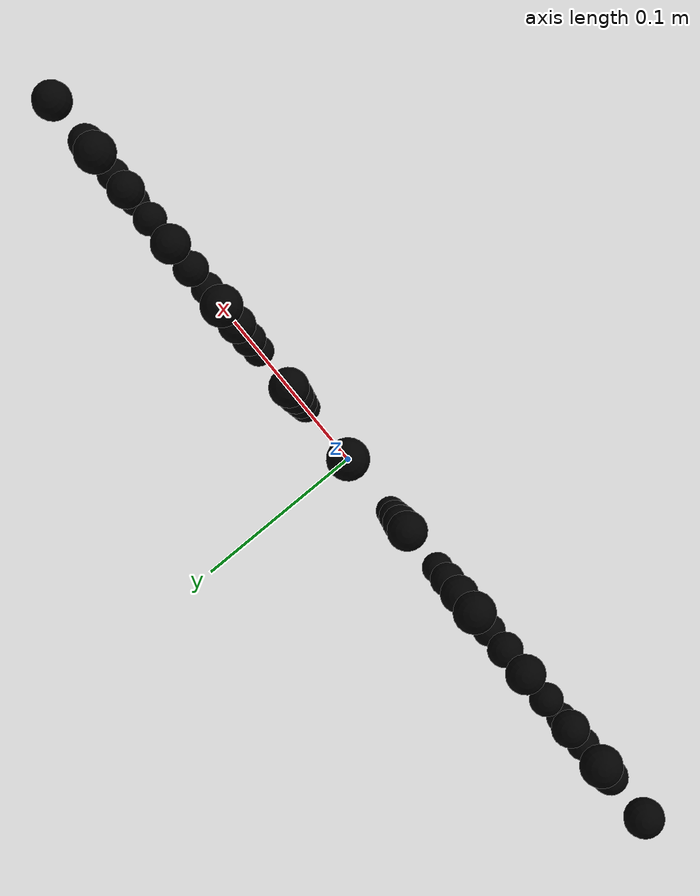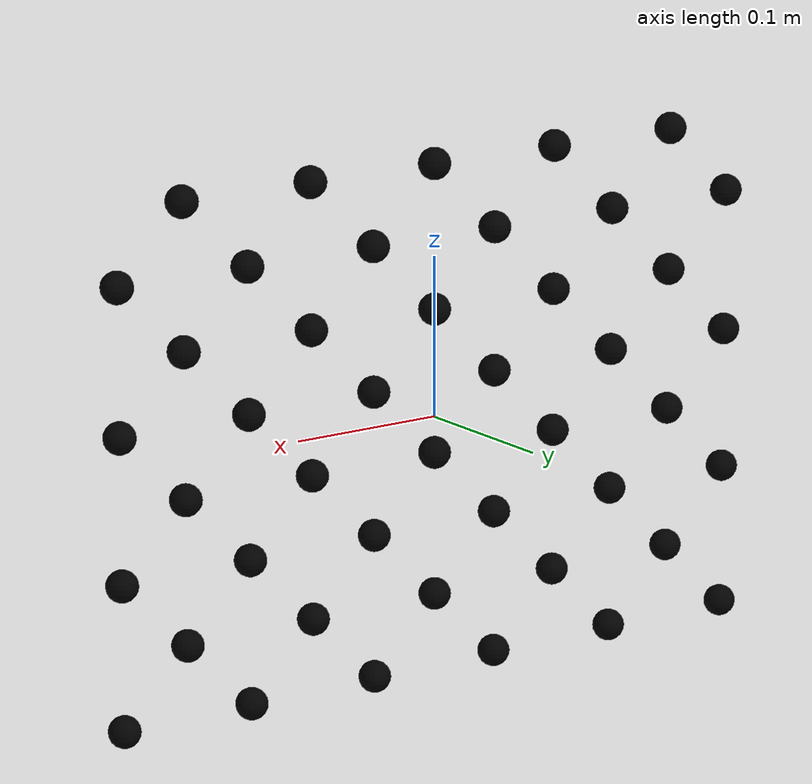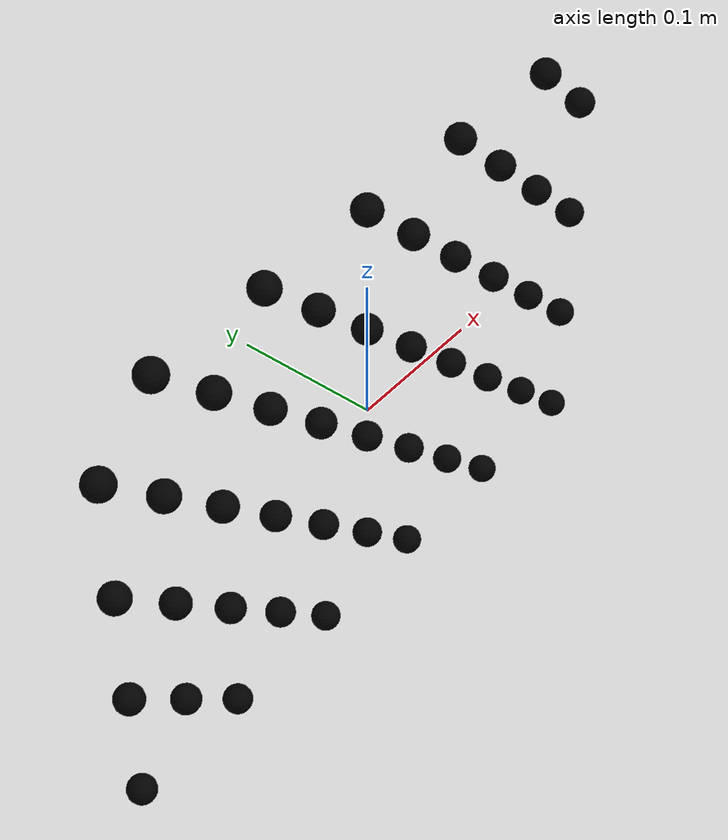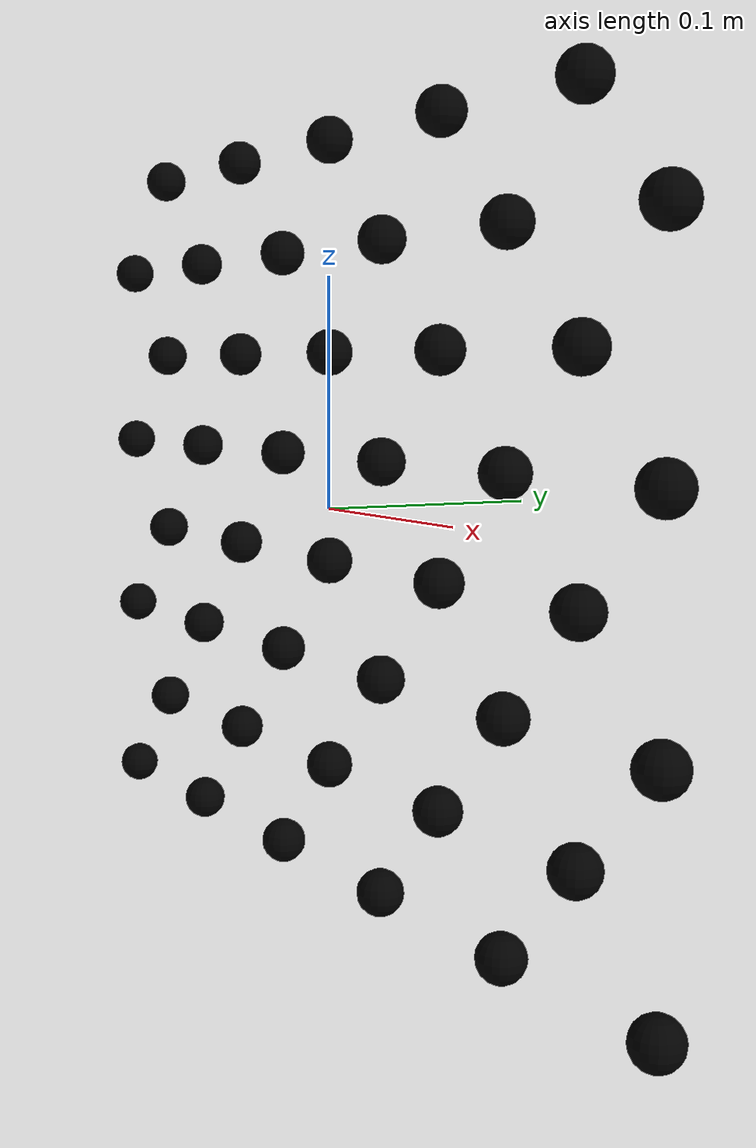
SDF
<?xml version="1.0" ?>
<sdf version="1.6">
  <model name="plate_holes">

    <link name="A1">
      <pose>-0.18 0 0.1575 0 0 0</pose>
      <collision name="collision"><geometry><sphere><radius>0.01</radius></sphere></geometry></collision>
      <visual name="visual"><geometry><sphere><radius>0.01</radius></sphere></geometry>  <material><ambient>0 0 0 1</ambient><diffuse>0 0 0 1</diffuse><specular>0 0 0 0</specular><emissive>1.0 0.2 0.2 1</emissive></material>
      </visual>
    </link>

    <link name="A2">
      <pose>-0.09 0 0.1575 0 0 0</pose>
      <collision name="collision"><geometry><sphere><radius>0.01</radius></sphere></geometry></collision>
      <visual name="visual"><geometry><sphere><radius>0.01</radius></sphere></geometry>  <material><ambient>0 0 0 1</ambient><diffuse>0 0 0 1</diffuse><specular>0 0 0 0</specular><emissive>1.0 0.2 0.2 1</emissive></material>
      </visual>
    </link>

    <link name="A3">
      <pose>0 0 0.1575 0 0 0</pose>
      <collision name="collision"><geometry><sphere><radius>0.01</radius></sphere></geometry></collision>
      <visual name="visual"><geometry><sphere><radius>0.01</radius></sphere></geometry>  <material><ambient>0 0 0 1</ambient><diffuse>0 0 0 1</diffuse><specular>0 0 0 0</specular><emissive>1.0 0.2 0.2 1</emissive></material>
      </visual>
    </link>

    <link name="A4">
      <pose>0.09 0 0.1575 0 0 0</pose>
      <collision name="collision"><geometry><sphere><radius>0.01</radius></sphere></geometry></collision>
      <visual name="visual"><geometry><sphere><radius>0.01</radius></sphere></geometry>  <material><ambient>0 0 0 1</ambient><diffuse>0 0 0 1</diffuse><specular>0 0 0 0</specular><emissive>1.0 0.2 0.2 1</emissive></material>
      </visual>
    </link>

    <link name="A5">
      <pose>0.18 0 0.1575 0 0 0</pose>
      <collision name="collision"><geometry><sphere><radius>0.01</radius></sphere></geometry></collision>
      <visual name="visual"><geometry><sphere><radius>0.01</radius></sphere></geometry>  <material><ambient>0 0 0 1</ambient><diffuse>0 0 0 1</diffuse><specular>0 0 0 0</specular><emissive>1.0 0.2 0.2 1</emissive></material>
      </visual>
    </link>

    <link name="B1">
      <pose>-0.225 0 0.1125 0 0 0</pose>
      <collision name="collision"><geometry><sphere><radius>0.01</radius></sphere></geometry></collision>
      <visual name="visual"><geometry><sphere><radius>0.01</radius></sphere></geometry>  <material><ambient>0 0 0 1</ambient><diffuse>0 0 0 1</diffuse><specular>0 0 0 0</specular><emissive>1.0 0.2 0.2 1</emissive></material>
      </visual>
    </link>

    <link name="B2">
      <pose>-0.135 0 0.1125 0 0 0</pose>
      <collision name="collision"><geometry><sphere><radius>0.01</radius></sphere></geometry></collision>
      <visual name="visual"><geometry><sphere><radius>0.01</radius></sphere></geometry>  <material><ambient>0 0 0 1</ambient><diffuse>0 0 0 1</diffuse><specular>0 0 0 0</specular><emissive>1.0 0.2 0.2 1</emissive></material>
      </visual>
    </link>

    <link name="B3">
      <pose>-0.045 0 0.1125 0 0 0</pose>
      <collision name="collision"><geometry><sphere><radius>0.01</radius></sphere></geometry></collision>
      <visual name="visual"><geometry><sphere><radius>0.01</radius></sphere></geometry>  <material><ambient>0 0 0 1</ambient><diffuse>0 0 0 1</diffuse><specular>0 0 0 0</specular><emissive>1.0 0.2 0.2 1</emissive></material>
      </visual>
    </link>

    <link name="B4">
      <pose>0.045 0 0.1125 0 0 0</pose>
      <collision name="collision"><geometry><sphere><radius>0.01</radius></sphere></geometry></collision>
      <visual name="visual"><geometry><sphere><radius>0.01</radius></sphere></geometry>  <material><ambient>0 0 0 1</ambient><diffuse>0 0 0 1</diffuse><specular>0 0 0 0</specular><emissive>1.0 0.2 0.2 1</emissive></material>
      </visual>
    </link>

    <link name="B5">
      <pose>0.135 0 0.1125 0 0 0</pose>
      <collision name="collision"><geometry><sphere><radius>0.01</radius></sphere></geometry></collision>
      <visual name="visual"><geometry><sphere><radius>0.01</radius></sphere></geometry>  <material><ambient>0 0 0 1</ambient><diffuse>0 0 0 1</diffuse><specular>0 0 0 0</specular><emissive>1.0 0.2 0.2 1</emissive></material>
      </visual>
    </link>

    <link name="B6">
      <pose>0.225 0 0.1125 0 0 0</pose>
      <collision name="collision"><geometry><sphere><radius>0.01</radius></sphere></geometry></collision>
      <visual name="visual"><geometry><sphere><radius>0.01</radius></sphere></geometry>  <material><ambient>0 0 0 1</ambient><diffuse>0 0 0 1</diffuse><specular>0 0 0 0</specular><emissive>1.0 0.2 0.2 1</emissive></material>
      </visual>
    </link>

    <link name="C1">
      <pose>-0.18 0 0.0675 0 0 0</pose>
      <collision name="collision"><geometry><sphere><radius>0.01</radius></sphere></geometry></collision>
      <visual name="visual"><geometry><sphere><radius>0.01</radius></sphere></geometry>  <material><ambient>0 0 0 1</ambient><diffuse>0 0 0 1</diffuse><specular>0 0 0 0</specular><emissive>1.0 0.2 0.2 1</emissive></material>
      </visual>
    </link>

    <link name="C2">
      <pose>-0.09 0 0.0675 0 0 0</pose>
      <collision name="collision"><geometry><sphere><radius>0.01</radius></sphere></geometry></collision>
      <visual name="visual"><geometry><sphere><radius>0.01</radius></sphere></geometry>  <material><ambient>0 0 0 1</ambient><diffuse>0 0 0 1</diffuse><specular>0 0 0 0</specular><emissive>1.0 0.2 0.2 1</emissive></material>
      </visual>
    </link>

    <link name="C3">
      <pose>0 0 0.0675 0 0 0</pose>
      <collision name="collision"><geometry><sphere><radius>0.01</radius></sphere></geometry></collision>
      <visual name="visual"><geometry><sphere><radius>0.01</radius></sphere></geometry>  <material><ambient>0 0 0 1</ambient><diffuse>0 0 0 1</diffuse><specular>0 0 0 0</specular><emissive>1.0 0.2 0.2 1</emissive></material>
      </visual>
    </link>

    <link name="C4">
      <pose>0.09 0 0.0675 0 0 0</pose>
      <collision name="collision"><geometry><sphere><radius>0.01</radius></sphere></geometry></collision>
      <visual name="visual"><geometry><sphere><radius>0.01</radius></sphere></geometry>  <material><ambient>0 0 0 1</ambient><diffuse>0 0 0 1</diffuse><specular>0 0 0 0</specular><emissive>1.0 0.2 0.2 1</emissive></material>
      </visual>
    </link>

    <link name="C5">
      <pose>0.18 0 0.0675 0 0 0</pose>
      <collision name="collision"><geometry><sphere><radius>0.01</radius></sphere></geometry></collision>
      <visual name="visual"><geometry><sphere><radius>0.01</radius></sphere></geometry>  <material><ambient>0 0 0 1</ambient><diffuse>0 0 0 1</diffuse><specular>0 0 0 0</specular><emissive>1.0 0.2 0.2 1</emissive></material>
      </visual>
    </link>

    <link name="D1">
      <pose>-0.225 0 0.0225 0 0 0</pose>
      <collision name="collision"><geometry><sphere><radius>0.01</radius></sphere></geometry></collision>
      <visual name="visual"><geometry><sphere><radius>0.01</radius></sphere></geometry>  <material><ambient>0 0 0 1</ambient><diffuse>0 0 0 1</diffuse><specular>0 0 0 0</specular><emissive>1.0 0.2 0.2 1</emissive></material>
      </visual>
    </link>

    <link name="D2">
      <pose>-0.135 0 0.0225 0 0 0</pose>
      <collision name="collision"><geometry><sphere><radius>0.01</radius></sphere></geometry></collision>
      <visual name="visual"><geometry><sphere><radius>0.01</radius></sphere></geometry>  <material><ambient>0 0 0 1</ambient><diffuse>0 0 0 1</diffuse><specular>0 0 0 0</specular><emissive>1.0 0.2 0.2 1</emissive></material>
      </visual>
    </link>

    <link name="D3">
      <pose>-0.045 0 0.0225 0 0 0</pose>
      <collision name="collision"><geometry><sphere><radius>0.01</radius></sphere></geometry></collision>
      <visual name="visual"><geometry><sphere><radius>0.01</radius></sphere></geometry>  <material><ambient>0 0 0 1</ambient><diffuse>0 0 0 1</diffuse><specular>0 0 0 0</specular><emissive>1.0 0.2 0.2 1</emissive></material>
      </visual>
    </link>

    <link name="D4">
      <pose>0.045 0 0.0225 0 0 0</pose>
      <collision name="collision"><geometry><sphere><radius>0.01</radius></sphere></geometry></collision>
      <visual name="visual"><geometry><sphere><radius>0.01</radius></sphere></geometry>  <material><ambient>0 0 0 1</ambient><diffuse>0 0 0 1</diffuse><specular>0 0 0 0</specular><emissive>1.0 0.2 0.2 1</emissive></material>
      </visual>
    </link>

    <link name="D5">
      <pose>0.135 0 0.0225 0 0 0</pose>
      <collision name="collision"><geometry><sphere><radius>0.01</radius></sphere></geometry></collision>
      <visual name="visual"><geometry><sphere><radius>0.01</radius></sphere></geometry>  <material><ambient>0 0 0 1</ambient><diffuse>0 0 0 1</diffuse><specular>0 0 0 0</specular><emissive>1.0 0.2 0.2 1</emissive></material>
      </visual>
    </link>

    <link name="D6">
      <pose>0.225 0 0.0225 0 0 0</pose>
      <collision name="collision"><geometry><sphere><radius>0.01</radius></sphere></geometry></collision>
      <visual name="visual"><geometry><sphere><radius>0.01</radius></sphere></geometry>  <material><ambient>0 0 0 1</ambient><diffuse>0 0 0 1</diffuse><specular>0 0 0 0</specular><emissive>1.0 0.2 0.2 1</emissive></material>
      </visual>
    </link>

    <link name="E1">
      <pose>-0.18 0 -0.0225 0 0 0</pose>
      <collision name="collision"><geometry><sphere><radius>0.01</radius></sphere></geometry></collision>
      <visual name="visual"><geometry><sphere><radius>0.01</radius></sphere></geometry>  <material><ambient>0 0 0 1</ambient><diffuse>0 0 0 1</diffuse><specular>0 0 0 0</specular><emissive>1.0 0.2 0.2 1</emissive></material>
      </visual>
    </link>

    <link name="E2">
      <pose>-0.09 0 -0.0225 0 0 0</pose>
      <collision name="collision"><geometry><sphere><radius>0.01</radius></sphere></geometry></collision>
      <visual name="visual"><geometry><sphere><radius>0.01</radius></sphere></geometry>  <material><ambient>0 0 0 1</ambient><diffuse>0 0 0 1</diffuse><specular>0 0 0 0</specular><emissive>1.0 0.2 0.2 1</emissive></material>
      </visual>
    </link>

    <link name="E3">
      <pose>0 0 -0.0225 0 0 0</pose>
      <collision name="collision"><geometry><sphere><radius>0.01</radius></sphere></geometry></collision>
      <visual name="visual"><geometry><sphere><radius>0.01</radius></sphere></geometry>  <material><ambient>0 0 0 1</ambient><diffuse>0 0 0 1</diffuse><specular>0 0 0 0</specular><emissive>1.0 0.2 0.2 1</emissive></material>
      </visual>
    </link>

    <link name="E4">
      <pose>0.09 0 -0.0225 0 0 0</pose>
      <collision name="collision"><geometry><sphere><radius>0.01</radius></sphere></geometry></collision>
      <visual name="visual"><geometry><sphere><radius>0.01</radius></sphere></geometry>  <material><ambient>0 0 0 1</ambient><diffuse>0 0 0 1</diffuse><specular>0 0 0 0</specular><emissive>1.0 0.2 0.2 1</emissive></material>
      </visual>
    </link>

    <link name="E5">
      <pose>0.18 0 -0.0225 0 0 0</pose>
      <collision name="collision"><geometry><sphere><radius>0.01</radius></sphere></geometry></collision>
      <visual name="visual"><geometry><sphere><radius>0.01</radius></sphere></geometry>  <material><ambient>0 0 0 1</ambient><diffuse>0 0 0 1</diffuse><specular>0 0 0 0</specular><emissive>1.0 0.2 0.2 1</emissive></material>
      </visual>
    </link>

    <link name="F1">
      <pose>-0.225 0 -0.0675 0 0 0</pose>
      <collision name="collision"><geometry><sphere><radius>0.01</radius></sphere></geometry></collision>
      <visual name="visual"><geometry><sphere><radius>0.01</radius></sphere></geometry>  <material><ambient>0 0 0 1</ambient><diffuse>0 0 0 1</diffuse><specular>0 0 0 0</specular><emissive>1.0 0.2 0.2 1</emissive></material>
      </visual>
    </link>

    <link name="F2">
      <pose>-0.135 0 -0.0675 0 0 0</pose>
      <collision name="collision"><geometry><sphere><radius>0.01</radius></sphere></geometry></collision>
      <visual name="visual"><geometry><sphere><radius>0.01</radius></sphere></geometry>  <material><ambient>0 0 0 1</ambient><diffuse>0 0 0 1</diffuse><specular>0 0 0 0</specular><emissive>1.0 0.2 0.2 1</emissive></material>
      </visual>
    </link>

    <link name="F3">
      <pose>-0.045 0 -0.0675 0 0 0</pose>
      <collision name="collision"><geometry><sphere><radius>0.01</radius></sphere></geometry></collision>
      <visual name="visual"><geometry><sphere><radius>0.01</radius></sphere></geometry>  <material><ambient>0 0 0 1</ambient><diffuse>0 0 0 1</diffuse><specular>0 0 0 0</specular><emissive>1.0 0.2 0.2 1</emissive></material>
      </visual>
    </link>

    <link name="F4">
      <pose>0.045 0 -0.0675 0 0 0</pose>
      <collision name="collision"><geometry><sphere><radius>0.01</radius></sphere></geometry></collision>
      <visual name="visual"><geometry><sphere><radius>0.01</radius></sphere></geometry>  <material><ambient>0 0 0 1</ambient><diffuse>0 0 0 1</diffuse><specular>0 0 0 0</specular><emissive>1.0 0.2 0.2 1</emissive></material>
      </visual>
    </link>

    <link name="F5">
      <pose>0.135 0 -0.0675 0 0 0</pose>
      <collision name="collision"><geometry><sphere><radius>0.01</radius></sphere></geometry></collision>
      <visual name="visual"><geometry><sphere><radius>0.01</radius></sphere></geometry>  <material><ambient>0 0 0 1</ambient><diffuse>0 0 0 1</diffuse><specular>0 0 0 0</specular><emissive>1.0 0.2 0.2 1</emissive></material>
      </visual>
    </link>

    <link name="F6">
      <pose>0.225 0 -0.0675 0 0 0</pose>
      <collision name="collision"><geometry><sphere><radius>0.01</radius></sphere></geometry></collision>
      <visual name="visual"><geometry><sphere><radius>0.01</radius></sphere></geometry>  <material><ambient>0 0 0 1</ambient><diffuse>0 0 0 1</diffuse><specular>0 0 0 0</specular><emissive>1.0 0.2 0.2 1</emissive></material>
      </visual>
    </link>

    <link name="G1">
      <pose>-0.18 0 -0.1125 0 0 0</pose>
      <collision name="collision"><geometry><sphere><radius>0.01</radius></sphere></geometry></collision>
      <visual name="visual"><geometry><sphere><radius>0.01</radius></sphere></geometry>  <material><ambient>0 0 0 1</ambient><diffuse>0 0 0 1</diffuse><specular>0 0 0 0</specular><emissive>1.0 0.2 0.2 1</emissive></material>
      </visual>
    </link>

    <link name="G2">
      <pose>-0.09 0 -0.1125 0 0 0</pose>
      <collision name="collision"><geometry><sphere><radius>0.01</radius></sphere></geometry></collision>
      <visual name="visual"><geometry><sphere><radius>0.01</radius></sphere></geometry>  <material><ambient>0 0 0 1</ambient><diffuse>0 0 0 1</diffuse><specular>0 0 0 0</specular><emissive>1.0 0.2 0.2 1</emissive></material>
      </visual>
    </link>

    <link name="G3">
      <pose>0 0 -0.1125 0 0 0</pose>
      <collision name="collision"><geometry><sphere><radius>0.01</radius></sphere></geometry></collision>
      <visual name="visual"><geometry><sphere><radius>0.01</radius></sphere></geometry>  <material><ambient>0 0 0 1</ambient><diffuse>0 0 0 1</diffuse><specular>0 0 0 0</specular><emissive>1.0 0.2 0.2 1</emissive></material>
      </visual>
    </link>

    <link name="G4">
      <pose>0.09 0 -0.1125 0 0 0</pose>
      <collision name="collision"><geometry><sphere><radius>0.01</radius></sphere></geometry></collision>
      <visual name="visual"><geometry><sphere><radius>0.01</radius></sphere></geometry>  <material><ambient>0 0 0 1</ambient><diffuse>0 0 0 1</diffuse><specular>0 0 0 0</specular><emissive>1.0 0.2 0.2 1</emissive></material>
      </visual>
    </link>

    <link name="G5">
      <pose>0.18 0 -0.1125 0 0 0</pose>
      <collision name="collision"><geometry><sphere><radius>0.01</radius></sphere></geometry></collision>
      <visual name="visual"><geometry><sphere><radius>0.01</radius></sphere></geometry>  <material><ambient>0 0 0 1</ambient><diffuse>0 0 0 1</diffuse><specular>0 0 0 0</specular><emissive>1.0 0.2 0.2 1</emissive></material>
      </visual>
    </link>

    <link name="H1">
      <pose>-0.225 0 -0.1575 0 0 0</pose>
      <collision name="collision"><geometry><sphere><radius>0.01</radius></sphere></geometry></collision>
      <visual name="visual"><geometry><sphere><radius>0.01</radius></sphere></geometry>  <material><ambient>0 0 0 1</ambient><diffuse>0 0 0 1</diffuse><specular>0 0 0 0</specular><emissive>1.0 0.2 0.2 1</emissive></material>
      </visual>
    </link>

    <link name="H2">
      <pose>-0.135 0 -0.1575 0 0 0</pose>
      <collision name="collision"><geometry><sphere><radius>0.01</radius></sphere></geometry></collision>
      <visual name="visual"><geometry><sphere><radius>0.01</radius></sphere></geometry>  <material><ambient>0 0 0 1</ambient><diffuse>0 0 0 1</diffuse><specular>0 0 0 0</specular><emissive>1.0 0.2 0.2 1</emissive></material>
      </visual>
    </link>

    <link name="H3">
      <pose>-0.045 0 -0.1575 0 0 0</pose>
      <collision name="collision"><geometry><sphere><radius>0.01</radius></sphere></geometry></collision>
      <visual name="visual"><geometry><sphere><radius>0.01</radius></sphere></geometry>  <material><ambient>0 0 0 1</ambient><diffuse>0 0 0 1</diffuse><specular>0 0 0 0</specular><emissive>1.0 0.2 0.2 1</emissive></material>
      </visual>
    </link>

    <link name="H4">
      <pose>0.045 0 -0.1575 0 0 0</pose>
      <collision name="collision"><geometry><sphere><radius>0.01</radius></sphere></geometry></collision>
      <visual name="visual"><geometry><sphere><radius>0.01</radius></sphere></geometry>  <material><ambient>0 0 0 1</ambient><diffuse>0 0 0 1</diffuse><specular>0 0 0 0</specular><emissive>1.0 0.2 0.2 1</emissive></material>
      </visual>
    </link>

    <link name="H5">
      <pose>0.135 0 -0.1575 0 0 0</pose>
      <collision name="collision"><geometry><sphere><radius>0.01</radius></sphere></geometry></collision>
      <visual name="visual"><geometry><sphere><radius>0.01</radius></sphere></geometry>  <material><ambient>0 0 0 1</ambient><diffuse>0 0 0 1</diffuse><specular>0 0 0 0</specular><emissive>1.0 0.2 0.2 1</emissive></material>
      </visual>
    </link>

    <link name="H6">
      <pose>0.225 0 -0.1575 0 0 0</pose>
      <collision name="collision"><geometry><sphere><radius>0.01</radius></sphere></geometry></collision>
      <visual name="visual"><geometry><sphere><radius>0.01</radius></sphere></geometry>  <material><ambient>0 0 0 1</ambient><diffuse>0 0 0 1</diffuse><specular>0 0 0 0</specular><emissive>1.0 0.2 0.2 1</emissive></material>
      </visual>
    </link>
  </model>
</sdf>
